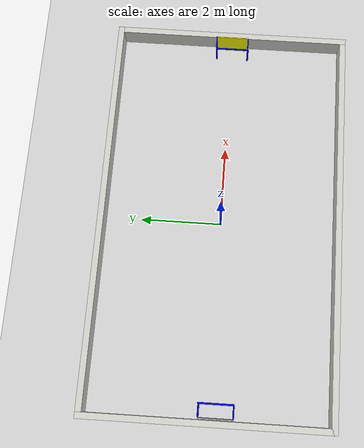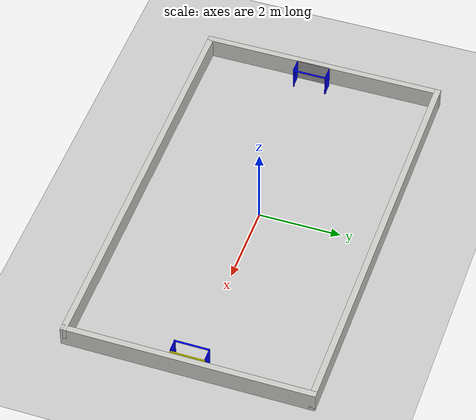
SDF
<sdf version="1.7">
 <world name="default">
  <scene><ambient>0.4 0.4 0.4 1</ambient><background>0.7 0.7 0.7 1</background><shadows>1</shadows></scene>
  <light name="sun" type="directional">
   <pose>0 0 10 0 -0 0</pose>
   <diffuse>0.8 0.8 0.8 1</diffuse>
   <specular>0.2 0.2 0.2 1</specular>
   <attenuation>
    <range>1000</range>
    <constant>0.9</constant>
    <linear>0.01</linear>
    <quadratic>0.001</quadratic>
   </attenuation>
   <direction>-0.5 0.1 -0.9</direction>
   <spot><inner_angle>0</inner_angle><outer_angle>0</outer_angle><falloff>0</falloff></spot>
  </light>
  <model name="ground_plane">
   <static>1</static>
   <link name="link">
    <collision name="collision">
     <geometry><plane><normal>0 0 1</normal><size>100 100</size></plane></geometry>
     <surface>
      <contact><collide_bitmask>65535</collide_bitmask></contact>
      <friction><ode><mu>100</mu><mu2>50</mu2></ode></friction>
     </surface>
    </collision>
    <visual name="visual">
     <cast_shadows>0</cast_shadows>
     <geometry><plane><normal>0 0 1</normal><size>100 100</size></plane></geometry>
     <material>
      <script><uri>file://media/materials/scripts/gazebo.material</uri><name>Gazebo/Grey</name></script>
     </material>
    </visual>
   </link>
  </model>
  <physics type="ode">
   <real_time_update_rate>1000</real_time_update_rate>
   <max_step_size>0.001</max_step_size>
   <real_time_factor>1</real_time_factor>
   <ode>
    <solver>
     <type>quick</type>
     <iters>150</iters>
     <precon_iters>0</precon_iters>
     <sor>1.4</sor>
     <use_dynamic_moi_rescaling>1</use_dynamic_moi_rescaling>
    </solver>
    <constraints>
     <cfm>1e-05</cfm>
     <erp>0.2</erp>
     <contact_max_correcting_vel>2000</contact_max_correcting_vel>
     <contact_surface_layer>0.01</contact_surface_layer>
    </constraints>
   </ode>
  </physics>
  <gravity>0 0 -9.8</gravity>
  <magnetic_field>6e-06 2.3e-05 -4.2e-05</magnetic_field>
  <atmosphere type="adiabatic"/>
  <spherical_coordinates>
   <surface_model>EARTH_WGS84</surface_model>
   <latitude_deg>0</latitude_deg>
   <longitude_deg>0</longitude_deg>
   <elevation>0</elevation>
   <heading_deg>0</heading_deg>
  </spherical_coordinates>
  <model name="football_area">
   <pose>0.121911 0.028795 0 0 -0 1.5708</pose>
   <link name="Wall_6">
    <collision name="Wall_6_Collision">
     <geometry><box><size>6 0.15 0.5</size></box></geometry>
     <pose>0 0 0.25 0 -0 0</pose>
    </collision>
    <visual name="Wall_6_Visual">
     <pose>0 0 0.25 0 -0 0</pose>
     <geometry><box><size>6 0.15 0.5</size></box></geometry>
     <material>
      <script><uri>file://media/materials/scripts/gazebo.material</uri><name>Gazebo/CeilingTiled</name></script>
      <ambient>1 1 1 1</ambient>
     </material>
     <meta><layer>0</layer></meta>
    </visual>
    <pose>0 -4.925 0 0 -0 0</pose>
   </link>
   <link name="Wall_7">
    <collision name="Wall_7_Collision">
     <geometry><box><size>10 0.15 0.5</size></box></geometry>
     <pose>0 0 0.25 0 -0 0</pose>
    </collision>
    <visual name="Wall_7_Visual">
     <pose>0 0 0.25 0 -0 0</pose>
     <geometry><box><size>10 0.15 0.5</size></box></geometry>
     <material>
      <script><uri>file://media/materials/scripts/gazebo.material</uri><name>Gazebo/CeilingTiled</name></script>
      <ambient>1 1 1 1</ambient>
     </material>
     <meta><layer>0</layer></meta>
    </visual>
    <pose>2.925 0 0 0 -0 1.5708</pose>
   </link>
   <link name="Wall_8">
    <collision name="Wall_8_Collision">
     <geometry><box><size>6 0.15 0.5</size></box></geometry>
     <pose>0 0 0.25 0 -0 0</pose>
    </collision>
    <visual name="Wall_8_Visual">
     <pose>0 0 0.25 0 -0 0</pose>
     <geometry><box><size>6 0.15 0.5</size></box></geometry>
     <material>
      <script><uri>file://media/materials/scripts/gazebo.material</uri><name>Gazebo/CeilingTiled</name></script>
      <ambient>1 1 1 1</ambient>
     </material>
     <meta><layer>0</layer></meta>
    </visual>
    <pose>0 4.925 0 0 -0 3.14159</pose>
   </link>
   <link name="Wall_9">
    <collision name="Wall_9_Collision">
     <geometry><box><size>10 0.15 0.5</size></box></geometry>
     <pose>0 0 0.25 0 -0 0</pose>
    </collision>
    <visual name="Wall_9_Visual">
     <pose>0 0 0.25 0 -0 0</pose>
     <geometry><box><size>10 0.15 0.5</size></box></geometry>
     <material>
      <script><uri>file://media/materials/scripts/gazebo.material</uri><name>Gazebo/CeilingTiled</name></script>
      <ambient>1 1 1 1</ambient>
     </material>
     <meta><layer>0</layer></meta>
    </visual>
    <pose>-2.925 0 0 0 -0 -1.5708</pose>
   </link>
   <static>1</static>
  </model>
  <model name="yellow_goal_2">
   <link name="link_0">
    <inertial>
     <mass>1</mass>
     <inertia>
      <ixx>0.0597878</ixx>
      <ixy>0</ixy>
      <ixz>0</ixz>
      <iyy>0.0597878</iyy>
      <iyz>0</iyz>
      <izz>0.000213438</izz>
     </inertia>
    </inertial>
    <pose>0.000936 0.404528 0.424703 0 -0 0</pose>
    <visual name="visual">
     <geometry><cylinder><radius>0.0206606</radius><length>0.84627</length></cylinder></geometry>
     <material>
      <lighting>1</lighting>
      <script><uri>file://media/materials/scripts/gazebo.material</uri><name>Gazebo/Grey</name></script>
      <shader type="pixel"><normal_map>__default__</normal_map></shader>
      <ambient>0 0 1 0</ambient>
      <diffuse>0.7 0.7 0.7 1</diffuse>
      <specular>0.01 0.01 0.01 1</specular>
      <emissive>0 0 0.2 1</emissive>
     </material>
    </visual>
    <collision name="collision">
     <geometry><cylinder><radius>0.020661</radius><length>0.84627</length></cylinder></geometry>
     <surface>
      <friction>
       <ode><mu>1</mu><mu2>1</mu2><fdir1>0 0 0</fdir1><slip1>0</slip1><slip2>0</slip2></ode>
       <torsional>
        <coefficient>1</coefficient>
        <patch_radius>0</patch_radius>
        <surface_radius>0</surface_radius>
        <use_patch_radius>1</use_patch_radius>
        <ode><slip>0</slip></ode>
       </torsional>
      </friction>
      <bounce><restitution_coefficient>0</restitution_coefficient><threshold>1e+06</threshold></bounce>
      <contact>
       <collide_without_contact>0</collide_without_contact>
       <collide_without_contact_bitmask>1</collide_without_contact_bitmask>
       <collide_bitmask>1</collide_bitmask>
       <ode>
        <soft_cfm>0</soft_cfm>
        <soft_erp>0.2</soft_erp>
        <kp>1e+13</kp>
        <kd>1</kd>
        <max_vel>0.01</max_vel>
        <min_depth>0</min_depth>
       </ode>
       <bullet>
        <split_impulse>1</split_impulse>
        <split_impulse_penetration_threshold>-0.01</split_impulse_penetration_threshold>
        <soft_cfm>0</soft_cfm>
        <soft_erp>0.2</soft_erp>
        <kp>1e+13</kp>
        <kd>1</kd>
       </bullet>
      </contact>
     </surface>
    </collision>
   </link>
   <link name="link_0_0">
    <inertial>
     <mass>1</mass>
     <inertia>
      <ixx>0.121952</ixx>
      <ixy>0</ixy>
      <ixz>0</ixz>
      <iyy>0.0649777</iyy>
      <iyz>0</iyz>
      <izz>0.057059</izz>
     </inertia>
    </inertial>
    <pose>0.331215 0.018394 0.444551 0 -0 0</pose>
    <gravity>0</gravity>
    <visual name="visual">
     <geometry><box><size>0.022496 0.827165 0.882738</size></box></geometry>
     <material>
      <lighting>1</lighting>
      <script><uri>file://media/materials/scripts/gazebo.material</uri><name>Gazebo/Grey</name></script>
      <shader type="pixel"><normal_map>__default__</normal_map></shader>
      <ambient>1 1 0 0</ambient>
      <diffuse>0.7 0.7 0.7 1</diffuse>
      <specular>0.01 0.01 0.01 1</specular>
      <emissive>0.2 0.2 0 1</emissive>
     </material>
    </visual>
    <collision name="collision">
     <geometry><box><size>0.022496 0.827165 0.882738</size></box></geometry>
     <surface>
      <friction>
       <ode><mu>1</mu><mu2>1</mu2><fdir1>0 0 0</fdir1><slip1>0</slip1><slip2>0</slip2></ode>
       <torsional>
        <coefficient>1</coefficient>
        <patch_radius>0</patch_radius>
        <surface_radius>0</surface_radius>
        <use_patch_radius>1</use_patch_radius>
        <ode><slip>0</slip></ode>
       </torsional>
      </friction>
      <bounce><restitution_coefficient>0</restitution_coefficient><threshold>1e+06</threshold></bounce>
      <contact>
       <collide_without_contact>0</collide_without_contact>
       <collide_without_contact_bitmask>1</collide_without_contact_bitmask>
       <collide_bitmask>1</collide_bitmask>
       <ode>
        <soft_cfm>0</soft_cfm>
        <soft_erp>0.2</soft_erp>
        <kp>1e+13</kp>
        <kd>1</kd>
        <max_vel>0.01</max_vel>
        <min_depth>0</min_depth>
       </ode>
       <bullet>
        <split_impulse>1</split_impulse>
        <split_impulse_penetration_threshold>-0.01</split_impulse_penetration_threshold>
        <soft_cfm>0</soft_cfm>
        <soft_erp>0.2</soft_erp>
        <kp>1e+13</kp>
        <kd>1</kd>
       </bullet>
      </contact>
     </surface>
    </collision>
   </link>
   <link name="link_0_0_clone">
    <inertial>
     <mass>1</mass>
     <inertia>
      <ixx>0.0734637</ixx>
      <ixy>0</ixy>
      <ixz>0</ixz>
      <iyy>0.0649777</iyy>
      <iyz>0</iyz>
      <izz>0.00857039</izz>
     </inertia>
    </inertial>
    <pose>0.170835 0.419394 0.444551 0 0 -1.5708</pose>
    <gravity>0</gravity>
    <visual name="visual_0">
     <geometry><box><size>0.022496 0.319904 0.882738</size></box></geometry>
     <material>
      <lighting>1</lighting>
      <script><uri>file://media/materials/scripts/gazebo.material</uri><name>Gazebo/Grey</name></script>
      <shader type="pixel"><normal_map>__default__</normal_map></shader>
      <ambient>0 0 1 1</ambient>
      <diffuse>0.7 0.7 0.7 1</diffuse>
      <specular>0.01 0.01 0.01 1</specular>
      <emissive>0 0 0.2 1</emissive>
     </material>
    </visual>
    <collision name="collision">
     <geometry><box><size>0.022496 0.319904 0.882738</size></box></geometry>
     <surface>
      <friction>
       <ode><mu>1</mu><mu2>1</mu2><fdir1>0 0 0</fdir1><slip1>0</slip1><slip2>0</slip2></ode>
       <torsional>
        <coefficient>1</coefficient>
        <patch_radius>0</patch_radius>
        <surface_radius>0</surface_radius>
        <use_patch_radius>1</use_patch_radius>
        <ode><slip>0</slip></ode>
       </torsional>
      </friction>
      <bounce><restitution_coefficient>0</restitution_coefficient><threshold>1e+06</threshold></bounce>
      <contact>
       <collide_without_contact>0</collide_without_contact>
       <collide_without_contact_bitmask>1</collide_without_contact_bitmask>
       <collide_bitmask>1</collide_bitmask>
       <ode>
        <soft_cfm>0</soft_cfm>
        <soft_erp>0.2</soft_erp>
        <kp>1e+13</kp>
        <kd>1</kd>
        <max_vel>0.01</max_vel>
        <min_depth>0</min_depth>
       </ode>
       <bullet>
        <split_impulse>1</split_impulse>
        <split_impulse_penetration_threshold>-0.01</split_impulse_penetration_threshold>
        <soft_cfm>0</soft_cfm>
        <soft_erp>0.2</soft_erp>
        <kp>1e+13</kp>
        <kd>1</kd>
       </bullet>
      </contact>
     </surface>
    </collision>
   </link>
   <link name="link_0_0_clone_clone">
    <inertial>
     <mass>1</mass>
     <inertia>
      <ixx>0.0734637</ixx>
      <ixy>0</ixy>
      <ixz>0</ixz>
      <iyy>0.0649777</iyy>
      <iyz>0</iyz>
      <izz>0.00857039</izz>
     </inertia>
    </inertial>
    <pose>0.152351 -0.401793 0.444551 0 0 -1.5708</pose>
    <gravity>0</gravity>
    <visual name="visual_0">
     <geometry><box><size>0.022496 0.319904 0.882738</size></box></geometry>
     <material>
      <lighting>1</lighting>
      <script><uri>file://media/materials/scripts/gazebo.material</uri><name>Gazebo/Grey</name></script>
      <shader type="pixel"><normal_map>__default__</normal_map></shader>
      <ambient>0 0 1 1</ambient>
      <diffuse>0.7 0.7 0.7 1</diffuse>
      <specular>0.01 0.01 0.01 1</specular>
      <emissive>0 0 0.2 1</emissive>
     </material>
    </visual>
    <collision name="collision">
     <geometry><box><size>0.022496 0.319904 0.882738</size></box></geometry>
     <surface>
      <friction>
       <ode><mu>1</mu><mu2>1</mu2><fdir1>0 0 0</fdir1><slip1>0</slip1><slip2>0</slip2></ode>
       <torsional>
        <coefficient>1</coefficient>
        <patch_radius>0</patch_radius>
        <surface_radius>0</surface_radius>
        <use_patch_radius>1</use_patch_radius>
        <ode><slip>0</slip></ode>
       </torsional>
      </friction>
      <bounce><restitution_coefficient>0</restitution_coefficient><threshold>1e+06</threshold></bounce>
      <contact>
       <collide_without_contact>0</collide_without_contact>
       <collide_without_contact_bitmask>1</collide_without_contact_bitmask>
       <collide_bitmask>1</collide_bitmask>
       <ode>
        <soft_cfm>0</soft_cfm>
        <soft_erp>0.2</soft_erp>
        <kp>1e+13</kp>
        <kd>1</kd>
        <max_vel>0.01</max_vel>
        <min_depth>0</min_depth>
       </ode>
       <bullet>
        <split_impulse>1</split_impulse>
        <split_impulse_penetration_threshold>-0.01</split_impulse_penetration_threshold>
        <soft_cfm>0</soft_cfm>
        <soft_erp>0.2</soft_erp>
        <kp>1e+13</kp>
        <kd>1</kd>
       </bullet>
      </contact>
     </surface>
    </collision>
   </link>
   <link name="link_0_clone">
    <inertial>
     <mass>0.999985</mass>
     <inertia>
      <ixx>0.0597869</ixx>
      <ixy>0</ixy>
      <ixz>0</ixz>
      <iyy>0.0597869</iyy>
      <iyz>0</iyz>
      <izz>0.000213435</izz>
     </inertia>
    </inertial>
    <pose>-0.001199 -0.406304 0.427308 0 -0 0</pose>
    <visual name="visual">
     <geometry><cylinder><radius>0.0206606</radius><length>0.84627</length></cylinder></geometry>
     <material>
      <lighting>1</lighting>
      <script><uri>file://media/materials/scripts/gazebo.material</uri><name>Gazebo/Grey</name></script>
      <shader type="pixel"><normal_map>__default__</normal_map></shader>
      <ambient>0 0 1 1</ambient>
      <diffuse>0.7 0.7 0.7 1</diffuse>
      <specular>0.01 0.01 0.01 1</specular>
      <emissive>0 0 0.2 1</emissive>
     </material>
    </visual>
    <collision name="collision">
     <geometry><cylinder><radius>0.020661</radius><length>0.84627</length></cylinder></geometry>
     <surface>
      <friction>
       <ode><mu>1</mu><mu2>1</mu2><fdir1>0 0 0</fdir1><slip1>0</slip1><slip2>0</slip2></ode>
       <torsional>
        <coefficient>1</coefficient>
        <patch_radius>0</patch_radius>
        <surface_radius>0</surface_radius>
        <use_patch_radius>1</use_patch_radius>
        <ode><slip>0</slip></ode>
       </torsional>
      </friction>
      <bounce><restitution_coefficient>0</restitution_coefficient><threshold>1e+06</threshold></bounce>
      <contact>
       <collide_without_contact>0</collide_without_contact>
       <collide_without_contact_bitmask>1</collide_without_contact_bitmask>
       <collide_bitmask>1</collide_bitmask>
       <ode>
        <soft_cfm>0</soft_cfm>
        <soft_erp>0.2</soft_erp>
        <kp>1e+13</kp>
        <kd>1</kd>
        <max_vel>0.01</max_vel>
        <min_depth>0</min_depth>
       </ode>
       <bullet>
        <split_impulse>1</split_impulse>
        <split_impulse_penetration_threshold>-0.01</split_impulse_penetration_threshold>
        <soft_cfm>0</soft_cfm>
        <soft_erp>0.2</soft_erp>
        <kp>1e+13</kp>
        <kd>1</kd>
       </bullet>
      </contact>
     </surface>
    </collision>
   </link>
   <link name="link_0_clone_0">
    <inertial>
     <mass>1</mass>
     <inertia>
      <ixx>0.0597878</ixx>
      <ixy>0</ixy>
      <ixz>0</ixz>
      <iyy>0.0597878</iyy>
      <iyz>0</iyz>
      <izz>0.00021344</izz>
     </inertia>
    </inertial>
    <pose>0.000256 0.001774 0.862785 1.5708 -0 0</pose>
    <visual name="visual">
     <geometry><cylinder><radius>0.0206606</radius><length>0.84627</length></cylinder></geometry>
     <material>
      <lighting>1</lighting>
      <script><uri>file://media/materials/scripts/gazebo.material</uri><name>Gazebo/Grey</name></script>
      <shader type="pixel"><normal_map>__default__</normal_map></shader>
      <ambient>0 0 1 0</ambient>
      <diffuse>0.7 0.7 0.7 1</diffuse>
      <specular>0.01 0.01 0.01 1</specular>
      <emissive>0 0 0.2 1</emissive>
     </material>
    </visual>
    <collision name="collision">
     <geometry><cylinder><radius>0.020661</radius><length>0.84627</length></cylinder></geometry>
     <surface>
      <friction>
       <ode><mu>1</mu><mu2>1</mu2><fdir1>0 0 0</fdir1><slip1>0</slip1><slip2>0</slip2></ode>
       <torsional>
        <coefficient>1</coefficient>
        <patch_radius>0</patch_radius>
        <surface_radius>0</surface_radius>
        <use_patch_radius>1</use_patch_radius>
        <ode><slip>0</slip></ode>
       </torsional>
      </friction>
      <bounce><restitution_coefficient>0</restitution_coefficient><threshold>1e+06</threshold></bounce>
      <contact>
       <collide_without_contact>0</collide_without_contact>
       <collide_without_contact_bitmask>1</collide_without_contact_bitmask>
       <collide_bitmask>1</collide_bitmask>
       <ode>
        <soft_cfm>0</soft_cfm>
        <soft_erp>0.2</soft_erp>
        <kp>1e+13</kp>
        <kd>1</kd>
        <max_vel>0.01</max_vel>
        <min_depth>0</min_depth>
       </ode>
       <bullet>
        <split_impulse>1</split_impulse>
        <split_impulse_penetration_threshold>-0.01</split_impulse_penetration_threshold>
        <soft_cfm>0</soft_cfm>
        <soft_erp>0.2</soft_erp>
        <kp>1e+13</kp>
        <kd>1</kd>
       </bullet>
      </contact>
     </surface>
    </collision>
   </link>
   <static>1</static>
   <pose>4.63139 -0.009672 -0.342765 0 -0 0</pose>
  </model>
  <model name="blue_goal_2">
   <link name="link_0">
    <inertial>
     <mass>1</mass>
     <inertia>
      <ixx>0.0597878</ixx>
      <ixy>0</ixy>
      <ixz>0</ixz>
      <iyy>0.0597878</iyy>
      <iyz>0</iyz>
      <izz>0.000213438</izz>
     </inertia>
    </inertial>
    <pose>0.000936 0.404528 0.424703 0 -0 0</pose>
    <visual name="visual">
     <geometry><cylinder><radius>0.0206606</radius><length>0.84627</length></cylinder></geometry>
     <material>
      <lighting>1</lighting>
      <script><uri>file://media/materials/scripts/gazebo.material</uri><name>Gazebo/Grey</name></script>
      <shader type="pixel"><normal_map>__default__</normal_map></shader>
      <ambient>0 0 1 0</ambient>
      <diffuse>0.7 0.7 0.7 1</diffuse>
      <specular>0.01 0.01 0.01 1</specular>
      <emissive>0 0 0.2 1</emissive>
     </material>
    </visual>
    <collision name="collision">
     <geometry><cylinder><radius>0.020661</radius><length>0.84627</length></cylinder></geometry>
     <surface>
      <friction>
       <ode><mu>1</mu><mu2>1</mu2><fdir1>0 0 0</fdir1><slip1>0</slip1><slip2>0</slip2></ode>
       <torsional>
        <coefficient>1</coefficient>
        <patch_radius>0</patch_radius>
        <surface_radius>0</surface_radius>
        <use_patch_radius>1</use_patch_radius>
        <ode><slip>0</slip></ode>
       </torsional>
      </friction>
      <bounce><restitution_coefficient>0</restitution_coefficient><threshold>1e+06</threshold></bounce>
      <contact>
       <collide_without_contact>0</collide_without_contact>
       <collide_without_contact_bitmask>1</collide_without_contact_bitmask>
       <collide_bitmask>1</collide_bitmask>
       <ode>
        <soft_cfm>0</soft_cfm>
        <soft_erp>0.2</soft_erp>
        <kp>1e+13</kp>
        <kd>1</kd>
        <max_vel>0.01</max_vel>
        <min_depth>0</min_depth>
       </ode>
       <bullet>
        <split_impulse>1</split_impulse>
        <split_impulse_penetration_threshold>-0.01</split_impulse_penetration_threshold>
        <soft_cfm>0</soft_cfm>
        <soft_erp>0.2</soft_erp>
        <kp>1e+13</kp>
        <kd>1</kd>
       </bullet>
      </contact>
     </surface>
    </collision>
   </link>
   <link name="link_0_0">
    <inertial>
     <mass>1</mass>
     <inertia>
      <ixx>0.121952</ixx>
      <ixy>0</ixy>
      <ixz>0</ixz>
      <iyy>0.0649777</iyy>
      <iyz>0</iyz>
      <izz>0.057059</izz>
     </inertia>
    </inertial>
    <pose>0.331215 0.018394 0.444551 0 -0 0</pose>
    <visual name="visual">
     <geometry><box><size>0.022496 0.827165 0.882738</size></box></geometry>
     <material>
      <lighting>1</lighting>
      <script><uri>file://media/materials/scripts/gazebo.material</uri><name>Gazebo/Grey</name></script>
      <shader type="pixel"><normal_map>__default__</normal_map></shader>
      <ambient>1 1 1 1</ambient>
      <diffuse>0.7 0.7 0.7 1</diffuse>
      <specular>0.01 0.01 0.01 1</specular>
      <emissive>0 0 0 1</emissive>
     </material>
    </visual>
    <collision name="collision">
     <geometry><box><size>0.022496 0.827165 0.882738</size></box></geometry>
     <surface>
      <friction>
       <ode><mu>1</mu><mu2>1</mu2><fdir1>0 0 0</fdir1><slip1>0</slip1><slip2>0</slip2></ode>
       <torsional>
        <coefficient>1</coefficient>
        <patch_radius>0</patch_radius>
        <surface_radius>0</surface_radius>
        <use_patch_radius>1</use_patch_radius>
        <ode><slip>0</slip></ode>
       </torsional>
      </friction>
      <bounce><restitution_coefficient>0</restitution_coefficient><threshold>1e+06</threshold></bounce>
      <contact>
       <collide_without_contact>0</collide_without_contact>
       <collide_without_contact_bitmask>1</collide_without_contact_bitmask>
       <collide_bitmask>1</collide_bitmask>
       <ode>
        <soft_cfm>0</soft_cfm>
        <soft_erp>0.2</soft_erp>
        <kp>1e+13</kp>
        <kd>1</kd>
        <max_vel>0.01</max_vel>
        <min_depth>0</min_depth>
       </ode>
       <bullet>
        <split_impulse>1</split_impulse>
        <split_impulse_penetration_threshold>-0.01</split_impulse_penetration_threshold>
        <soft_cfm>0</soft_cfm>
        <soft_erp>0.2</soft_erp>
        <kp>1e+13</kp>
        <kd>1</kd>
       </bullet>
      </contact>
     </surface>
    </collision>
   </link>
   <link name="link_0_0_clone">
    <inertial>
     <mass>1</mass>
     <inertia>
      <ixx>0.0734637</ixx>
      <ixy>0</ixy>
      <ixz>0</ixz>
      <iyy>0.0649777</iyy>
      <iyz>0</iyz>
      <izz>0.00857039</izz>
     </inertia>
    </inertial>
    <pose>0.170835 0.419394 0.444551 0 0 -1.5708</pose>
    <gravity>0</gravity>
    <visual name="visual_0">
     <geometry><box><size>0.022496 0.319904 0.882738</size></box></geometry>
     <material>
      <lighting>1</lighting>
      <script><uri>file://media/materials/scripts/gazebo.material</uri><name>Gazebo/Grey</name></script>
      <shader type="pixel"><normal_map>__default__</normal_map></shader>
      <ambient>0 0 1 1</ambient>
      <diffuse>0.7 0.7 0.7 1</diffuse>
      <specular>0.01 0.01 0.01 1</specular>
      <emissive>0 0 0.2 1</emissive>
     </material>
    </visual>
    <collision name="collision">
     <geometry><box><size>0.022496 0.319904 0.882738</size></box></geometry>
     <surface>
      <friction>
       <ode><mu>1</mu><mu2>1</mu2><fdir1>0 0 0</fdir1><slip1>0</slip1><slip2>0</slip2></ode>
       <torsional>
        <coefficient>1</coefficient>
        <patch_radius>0</patch_radius>
        <surface_radius>0</surface_radius>
        <use_patch_radius>1</use_patch_radius>
        <ode><slip>0</slip></ode>
       </torsional>
      </friction>
      <bounce><restitution_coefficient>0</restitution_coefficient><threshold>1e+06</threshold></bounce>
      <contact>
       <collide_without_contact>0</collide_without_contact>
       <collide_without_contact_bitmask>1</collide_without_contact_bitmask>
       <collide_bitmask>1</collide_bitmask>
       <ode>
        <soft_cfm>0</soft_cfm>
        <soft_erp>0.2</soft_erp>
        <kp>1e+13</kp>
        <kd>1</kd>
        <max_vel>0.01</max_vel>
        <min_depth>0</min_depth>
       </ode>
       <bullet>
        <split_impulse>1</split_impulse>
        <split_impulse_penetration_threshold>-0.01</split_impulse_penetration_threshold>
        <soft_cfm>0</soft_cfm>
        <soft_erp>0.2</soft_erp>
        <kp>1e+13</kp>
        <kd>1</kd>
       </bullet>
      </contact>
     </surface>
    </collision>
   </link>
   <link name="link_0_0_clone_clone">
    <inertial>
     <mass>1</mass>
     <inertia>
      <ixx>0.0734637</ixx>
      <ixy>0</ixy>
      <ixz>0</ixz>
      <iyy>0.0649777</iyy>
      <iyz>0</iyz>
      <izz>0.00857039</izz>
     </inertia>
    </inertial>
    <pose>0.152351 -0.401793 0.444551 0 0 -1.5708</pose>
    <gravity>0</gravity>
    <visual name="visual_0">
     <geometry><box><size>0.022496 0.319904 0.882738</size></box></geometry>
     <material>
      <lighting>1</lighting>
      <script><uri>file://media/materials/scripts/gazebo.material</uri><name>Gazebo/Grey</name></script>
      <shader type="pixel"><normal_map>__default__</normal_map></shader>
      <ambient>0 0 1 1</ambient>
      <diffuse>0.7 0.7 0.7 1</diffuse>
      <specular>0.01 0.01 0.01 1</specular>
      <emissive>0 0 0.2 1</emissive>
     </material>
    </visual>
    <collision name="collision">
     <geometry><box><size>0.022496 0.319904 0.882738</size></box></geometry>
     <surface>
      <friction>
       <ode><mu>1</mu><mu2>1</mu2><fdir1>0 0 0</fdir1><slip1>0</slip1><slip2>0</slip2></ode>
       <torsional>
        <coefficient>1</coefficient>
        <patch_radius>0</patch_radius>
        <surface_radius>0</surface_radius>
        <use_patch_radius>1</use_patch_radius>
        <ode><slip>0</slip></ode>
       </torsional>
      </friction>
      <bounce><restitution_coefficient>0</restitution_coefficient><threshold>1e+06</threshold></bounce>
      <contact>
       <collide_without_contact>0</collide_without_contact>
       <collide_without_contact_bitmask>1</collide_without_contact_bitmask>
       <collide_bitmask>1</collide_bitmask>
       <ode>
        <soft_cfm>0</soft_cfm>
        <soft_erp>0.2</soft_erp>
        <kp>1e+13</kp>
        <kd>1</kd>
        <max_vel>0.01</max_vel>
        <min_depth>0</min_depth>
       </ode>
       <bullet>
        <split_impulse>1</split_impulse>
        <split_impulse_penetration_threshold>-0.01</split_impulse_penetration_threshold>
        <soft_cfm>0</soft_cfm>
        <soft_erp>0.2</soft_erp>
        <kp>1e+13</kp>
        <kd>1</kd>
       </bullet>
      </contact>
     </surface>
    </collision>
   </link>
   <link name="link_0_clone">
    <inertial>
     <mass>0.999985</mass>
     <inertia>
      <ixx>0.0597869</ixx>
      <ixy>0</ixy>
      <ixz>0</ixz>
      <iyy>0.0597869</iyy>
      <iyz>0</iyz>
      <izz>0.000213435</izz>
     </inertia>
    </inertial>
    <pose>-0.001199 -0.406304 0.427308 0 -0 0</pose>
    <visual name="visual">
     <geometry><cylinder><radius>0.0206606</radius><length>0.84627</length></cylinder></geometry>
     <material>
      <lighting>1</lighting>
      <script><uri>file://media/materials/scripts/gazebo.material</uri><name>Gazebo/Grey</name></script>
      <shader type="pixel"><normal_map>__default__</normal_map></shader>
      <ambient>0 0 1 1</ambient>
      <diffuse>0.7 0.7 0.7 1</diffuse>
      <specular>0.01 0.01 0.01 1</specular>
      <emissive>0 0 0.2 1</emissive>
     </material>
    </visual>
    <collision name="collision">
     <geometry><cylinder><radius>0.020661</radius><length>0.84627</length></cylinder></geometry>
     <surface>
      <friction>
       <ode><mu>1</mu><mu2>1</mu2><fdir1>0 0 0</fdir1><slip1>0</slip1><slip2>0</slip2></ode>
       <torsional>
        <coefficient>1</coefficient>
        <patch_radius>0</patch_radius>
        <surface_radius>0</surface_radius>
        <use_patch_radius>1</use_patch_radius>
        <ode><slip>0</slip></ode>
       </torsional>
      </friction>
      <bounce><restitution_coefficient>0</restitution_coefficient><threshold>1e+06</threshold></bounce>
      <contact>
       <collide_without_contact>0</collide_without_contact>
       <collide_without_contact_bitmask>1</collide_without_contact_bitmask>
       <collide_bitmask>1</collide_bitmask>
       <ode>
        <soft_cfm>0</soft_cfm>
        <soft_erp>0.2</soft_erp>
        <kp>1e+13</kp>
        <kd>1</kd>
        <max_vel>0.01</max_vel>
        <min_depth>0</min_depth>
       </ode>
       <bullet>
        <split_impulse>1</split_impulse>
        <split_impulse_penetration_threshold>-0.01</split_impulse_penetration_threshold>
        <soft_cfm>0</soft_cfm>
        <soft_erp>0.2</soft_erp>
        <kp>1e+13</kp>
        <kd>1</kd>
       </bullet>
      </contact>
     </surface>
    </collision>
   </link>
   <link name="link_0_clone_0">
    <inertial>
     <mass>1</mass>
     <inertia>
      <ixx>0.0597878</ixx>
      <ixy>0</ixy>
      <ixz>0</ixz>
      <iyy>0.0597878</iyy>
      <iyz>0</iyz>
      <izz>0.00021344</izz>
     </inertia>
    </inertial>
    <pose>0.000256 0.001774 0.862785 1.5708 -0 0</pose>
    <visual name="visual">
     <geometry><cylinder><radius>0.0206606</radius><length>0.84627</length></cylinder></geometry>
     <material>
      <lighting>1</lighting>
      <script><uri>file://media/materials/scripts/gazebo.material</uri><name>Gazebo/Grey</name></script>
      <shader type="pixel"><normal_map>__default__</normal_map></shader>
      <ambient>0 0 1 0</ambient>
      <diffuse>0.7 0.7 0.7 1</diffuse>
      <specular>0.01 0.01 0.01 1</specular>
      <emissive>0 0 0.2 1</emissive>
     </material>
    </visual>
    <collision name="collision">
     <geometry><cylinder><radius>0.020661</radius><length>0.84627</length></cylinder></geometry>
     <surface>
      <friction>
       <ode><mu>1</mu><mu2>1</mu2><fdir1>0 0 0</fdir1><slip1>0</slip1><slip2>0</slip2></ode>
       <torsional>
        <coefficient>1</coefficient>
        <patch_radius>0</patch_radius>
        <surface_radius>0</surface_radius>
        <use_patch_radius>1</use_patch_radius>
        <ode><slip>0</slip></ode>
       </torsional>
      </friction>
      <bounce><restitution_coefficient>0</restitution_coefficient><threshold>1e+06</threshold></bounce>
      <contact>
       <collide_without_contact>0</collide_without_contact>
       <collide_without_contact_bitmask>1</collide_without_contact_bitmask>
       <collide_bitmask>1</collide_bitmask>
       <ode>
        <soft_cfm>0</soft_cfm>
        <soft_erp>0.2</soft_erp>
        <kp>1e+13</kp>
        <kd>1</kd>
        <max_vel>0.01</max_vel>
        <min_depth>0</min_depth>
       </ode>
       <bullet>
        <split_impulse>1</split_impulse>
        <split_impulse_penetration_threshold>-0.01</split_impulse_penetration_threshold>
        <soft_cfm>0</soft_cfm>
        <soft_erp>0.2</soft_erp>
        <kp>1e+13</kp>
        <kd>1</kd>
       </bullet>
      </contact>
     </surface>
    </collision>
   </link>
   <static>1</static>
   <pose>-4.35871 -0.16832 -0.342765 0 -0 3.14159</pose>
  </model>
 </world>
</sdf>
